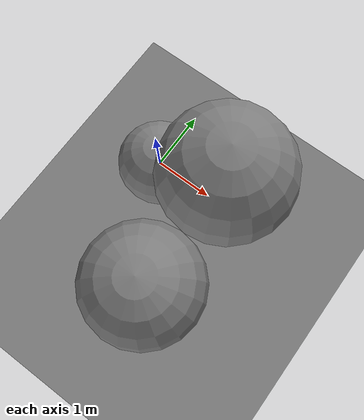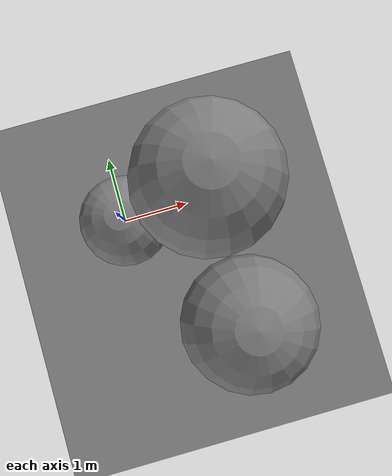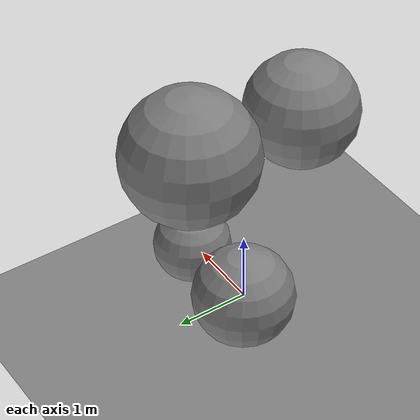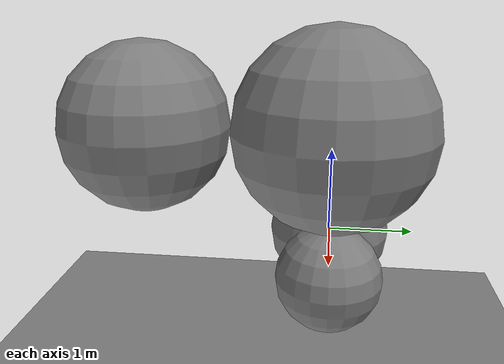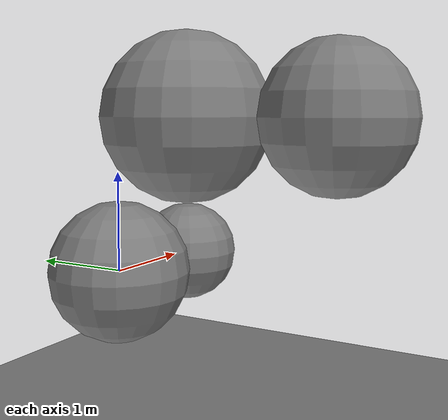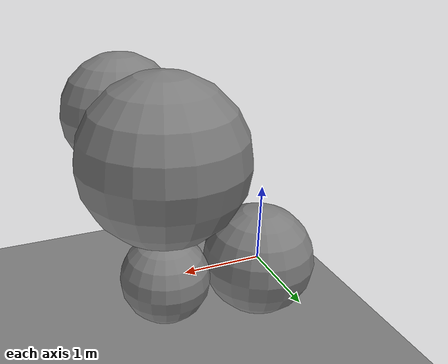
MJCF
<mujoco model="unnamed_model">
  <default>
    <default class="/"/>
  </default>
  <worldbody>
    <geom name="//unnamed_geom_0" class="/" type="plane" size="100 100 0.10000000000000001" pos="0 0 -1.7133633216537696"/>
    <body name="body0" pos="0 0 0">
      <joint name="//unnamed_joint_0" class="/" type="free"/>
      <geom name="//unnamed_geom_1" class="/" type="sphere" size="0.71336332165376959 0.71336332165376959 0.71336332165376959"/>
      <body name="body1" pos="1.2633371694520368 0 0">
        <geom name="//unnamed_geom_2" class="/" type="sphere" size="0.54997384779826719 0.54997384779826719 0.54997384779826719"/>
        <joint name="//unnamed_joint_1" class="/" type="hinge" axis="-1 0 0"/>
        <body name="body2" pos="0 0 1.5449404487449068">
          <geom name="//unnamed_geom_3" class="/" type="sphere" size="0.99496660094663958 0.99496660094663958 0.99496660094663958"/>
          <joint name="//unnamed_joint_2" class="/" type="hinge" axis="0 0 -1"/>
          <body name="body3" pos="0 -1.8346927918272284 0">
            <geom name="//unnamed_geom_4" class="/" type="sphere" size="0.83972619088058886 0.83972619088058886 0.83972619088058886"/>
            <joint name="//unnamed_joint_3" class="/" type="hinge" axis="0 1 0"/>
          </body>
        </body>
      </body>
    </body>
  </worldbody>
  <actuator>
    <motor name="body2_motor" class="/" ctrllimited="true" ctrlrange="-100 100" joint="//unnamed_joint_2"/>
    <motor name="body3_motor" class="/" ctrllimited="true" ctrlrange="-100 100" joint="//unnamed_joint_3"/>
  </actuator>
</mujoco>
